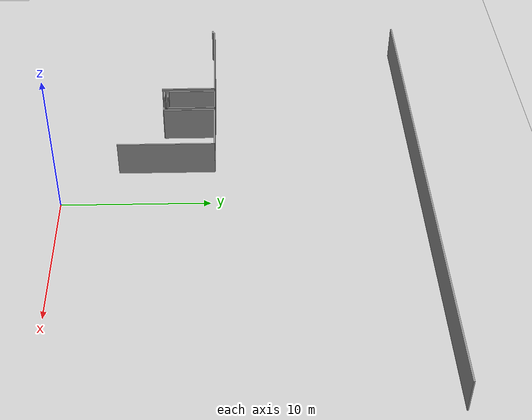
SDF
<sdf version="1.6">
 <world name="default">
  <model name="ground_plane">
   <static>1</static>
   <link name="link">
    <collision name="collision">
     <geometry><plane><normal>0 0 1</normal><size>100 100</size></plane></geometry>
     <surface><friction><ode><mu>100</mu><mu2>50</mu2></ode></friction></surface>
    </collision>
    <visual name="visual">
     <cast_shadows>0</cast_shadows>
     <geometry><plane><normal>0 0 1</normal><size>100 100</size></plane></geometry>
     <material>
      <script><uri>file://media/materials/scripts/gazebo.material</uri><name>Gazebo/Grey</name></script>
     </material>
    </visual>
   </link>
  </model>
  <model name="50055648">
   <static>1</static>
   <link name="Wall_4">
    <collision name="Wall_4_Collision">
     <geometry><box><size>0.269940676567 0.1 2.5</size></box></geometry>
     <pose>0.134970338283 0 1.25 0 0 0</pose>
    </collision>
    <visual name="Wall_4_Visual">
     <pose>0.134970338283 0 1.25 0 0 0</pose>
     <geometry><box><size>0.269940676567 0.1 2.5</size></box></geometry>
     <material>
      <script><uri>file://media/materials/scripts/gazebo.material</uri><name>Gazebo/Grey</name></script>
      <ambient>1 1 1 1</ambient>
     </material>
    </visual>
    <pose>0.00482717445155 -13.8854943408 0 0 0 0.0</pose>
   </link>
   <link name="Wall_5">
    <collision name="Wall_5_Collision">
     <geometry><box><size>0.132874328324 0.1 2.5</size></box></geometry>
     <pose>0.066437164162 0 1.25 0 0 0</pose>
    </collision>
    <visual name="Wall_5_Visual">
     <pose>0.066437164162 0 1.25 0 0 0</pose>
     <geometry><box><size>0.132874328324 0.1 2.5</size></box></geometry>
     <material>
      <script><uri>file://media/materials/scripts/gazebo.material</uri><name>Gazebo/Grey</name></script>
      <ambient>1 1 1 1</ambient>
     </material>
    </visual>
    <pose>0.274767851018 -13.8854943408 0 0 0 1.57079632679</pose>
   </link>
   <link name="Wall_6">
    <collision name="Wall_6_Collision">
     <geometry><box><size>7.29246325631 0.1 2.5</size></box></geometry>
     <pose>3.64623162816 0 1.25 0 0 0</pose>
    </collision>
    <visual name="Wall_6_Visual">
     <pose>3.64623162816 0 1.25 0 0 0</pose>
     <geometry><box><size>7.29246325631 0.1 2.5</size></box></geometry>
     <material>
      <script><uri>file://media/materials/scripts/gazebo.material</uri><name>Gazebo/Grey</name></script>
      <ambient>1 1 1 1</ambient>
     </material>
    </visual>
    <pose>0.274767851018 -13.7526200124 0 0 0 0.0</pose>
   </link>
   <link name="Wall_7">
    <collision name="Wall_7_Collision">
     <geometry><box><size>3.78285336822 0.1 2.5</size></box></geometry>
     <pose>1.89142668411 0 1.25 0 0 0</pose>
    </collision>
    <visual name="Wall_7_Visual">
     <pose>1.89142668411 0 1.25 0 0 0</pose>
     <geometry><box><size>3.78285336822 0.1 2.5</size></box></geometry>
     <material>
      <script><uri>file://media/materials/scripts/gazebo.material</uri><name>Gazebo/Grey</name></script>
      <ambient>1 1 1 1</ambient>
     </material>
    </visual>
    <pose>7.56723110733 -13.7526200124 0 0 0 -1.57079632679</pose>
   </link>
   <link name="Wall_12">
    <collision name="Wall_12_Collision">
     <geometry><box><size>0.0163869869539 0.1 2.5</size></box></geometry>
     <pose>0.00819349347696 0 1.25 0 0 0</pose>
    </collision>
    <visual name="Wall_12_Visual">
     <pose>0.00819349347696 0 1.25 0 0 0</pose>
     <geometry><box><size>0.0163869869539 0.1 2.5</size></box></geometry>
     <material>
      <script><uri>file://media/materials/scripts/gazebo.material</uri><name>Gazebo/Grey</name></script>
      <ambient>1 1 1 1</ambient>
     </material>
    </visual>
    <pose>7.91643906963 -17.0936598875 0 0 0 3.14159265359</pose>
   </link>
   <link name="Wall_13">
    <collision name="Wall_13_Collision">
     <geometry><box><size>3.3391344114 0.1 2.5</size></box></geometry>
     <pose>1.6695672057 0 1.25 0 0 0</pose>
    </collision>
    <visual name="Wall_13_Visual">
     <pose>1.6695672057 0 1.25 0 0 0</pose>
     <geometry><box><size>3.3391344114 0.1 2.5</size></box></geometry>
     <material>
      <script><uri>file://media/materials/scripts/gazebo.material</uri><name>Gazebo/Grey</name></script>
      <ambient>1 1 1 1</ambient>
     </material>
    </visual>
    <pose>7.90005208267 -17.0936598875 0 0 0 1.57079632679</pose>
   </link>
   <link name="Wall_14">
    <collision name="Wall_14_Collision">
     <geometry><box><size>1.92210464806 0.1 2.5</size></box></geometry>
     <pose>0.96105232403 0 1.25 0 0 0</pose>
    </collision>
    <visual name="Wall_14_Visual">
     <pose>0.96105232403 0 1.25 0 0 0</pose>
     <geometry><box><size>1.92210464806 0.1 2.5</size></box></geometry>
     <material>
      <script><uri>file://media/materials/scripts/gazebo.material</uri><name>Gazebo/Grey</name></script>
      <ambient>1 1 1 1</ambient>
     </material>
    </visual>
    <pose>7.90005208267 -13.754525476 0 0 0 0.0</pose>
   </link>
   <link name="Wall_15">
    <collision name="Wall_15_Collision">
     <geometry><box><size>3.33684785508 0.1 2.5</size></box></geometry>
     <pose>1.66842392754 0 1.25 0 0 0</pose>
    </collision>
    <visual name="Wall_15_Visual">
     <pose>1.66842392754 0 1.25 0 0 0</pose>
     <geometry><box><size>3.33684785508 0.1 2.5</size></box></geometry>
     <material>
      <script><uri>file://media/materials/scripts/gazebo.material</uri><name>Gazebo/Grey</name></script>
      <ambient>1 1 1 1</ambient>
     </material>
    </visual>
    <pose>9.82215673073 -13.754525476 0 0 0 -1.57079632679</pose>
   </link>
   <link name="Wall_16">
    <collision name="Wall_16_Collision">
     <geometry><box><size>0.0793943166372 0.1 2.5</size></box></geometry>
     <pose>0.0396971583186 0 1.25 0 0 0</pose>
    </collision>
    <visual name="Wall_16_Visual">
     <pose>0.0396971583186 0 1.25 0 0 0</pose>
     <geometry><box><size>0.0793943166372 0.1 2.5</size></box></geometry>
     <material>
      <script><uri>file://media/materials/scripts/gazebo.material</uri><name>Gazebo/Grey</name></script>
      <ambient>1 1 1 1</ambient>
     </material>
    </visual>
    <pose>9.82215673073 -17.0913733311 0 0 0 3.14159265359</pose>
   </link>
   <link name="Wall_17">
    <collision name="Wall_17_Collision">
     <geometry><box><size>0.671997386178 0.1 2.5</size></box></geometry>
     <pose>0.335998693089 0 1.25 0 0 0</pose>
    </collision>
    <visual name="Wall_17_Visual">
     <pose>0.335998693089 0 1.25 0 0 0</pose>
     <geometry><box><size>0.671997386178 0.1 2.5</size></box></geometry>
     <material>
      <script><uri>file://media/materials/scripts/gazebo.material</uri><name>Gazebo/Grey</name></script>
      <ambient>1 1 1 1</ambient>
     </material>
    </visual>
    <pose>8.58843256564 -17.0913733311 0 0 0 -3.13819002022</pose>
   </link>
   <link name="Wall_28">
    <collision name="Wall_28_Collision">
     <geometry><box><size>0.569733616189 0.1 2.5</size></box></geometry>
     <pose>0.284866808094 0 1.25 0 0 0</pose>
    </collision>
    <visual name="Wall_28_Visual">
     <pose>0.284866808094 0 1.25 0 0 0</pose>
     <geometry><box><size>0.569733616189 0.1 2.5</size></box></geometry>
     <material>
      <script><uri>file://media/materials/scripts/gazebo.material</uri><name>Gazebo/Grey</name></script>
      <ambient>1 1 1 1</ambient>
     </material>
    </visual>
    <pose>7.90106832992 -17.3620761931 0 0 0 0.0</pose>
   </link>
   <link name="Wall_29">
    <collision name="Wall_29_Collision">
     <geometry><box><size>0.0213411923121 0.1 2.5</size></box></geometry>
     <pose>0.010670596156 0 1.25 0 0 0</pose>
    </collision>
    <visual name="Wall_29_Visual">
     <pose>0.010670596156 0 1.25 0 0 0</pose>
     <geometry><box><size>0.0213411923121 0.1 2.5</size></box></geometry>
     <material>
      <script><uri>file://media/materials/scripts/gazebo.material</uri><name>Gazebo/Grey</name></script>
      <ambient>1 1 1 1</ambient>
     </material>
    </visual>
    <pose>8.47080194611 -17.3620761931 0 0 0 1.57079632679</pose>
   </link>
   <link name="Wall_30">
    <collision name="Wall_30_Collision">
     <geometry><box><size>0.109246579693 0.1 2.5</size></box></geometry>
     <pose>0.0546232898464 0 1.25 0 0 0</pose>
    </collision>
    <visual name="Wall_30_Visual">
     <pose>0.0546232898464 0 1.25 0 0 0</pose>
     <geometry><box><size>0.109246579693 0.1 2.5</size></box></geometry>
     <material>
      <script><uri>file://media/materials/scripts/gazebo.material</uri><name>Gazebo/Grey</name></script>
      <ambient>1 1 1 1</ambient>
     </material>
    </visual>
    <pose>8.47080194611 -17.3407350008 0 0 0 0.0</pose>
   </link>
   <link name="Wall_31">
    <collision name="Wall_31_Collision">
     <geometry><box><size>0.377027730847 0.1 2.5</size></box></geometry>
     <pose>0.188513865423 0 1.25 0 0 0</pose>
    </collision>
    <visual name="Wall_31_Visual">
     <pose>0.188513865423 0 1.25 0 0 0</pose>
     <geometry><box><size>0.377027730847 0.1 2.5</size></box></geometry>
     <material>
      <script><uri>file://media/materials/scripts/gazebo.material</uri><name>Gazebo/Grey</name></script>
      <ambient>1 1 1 1</ambient>
     </material>
    </visual>
    <pose>9.71633998552 -17.3407350008 0 0 0 0.0</pose>
   </link>
   <link name="Wall_32">
    <collision name="Wall_32_Collision">
     <geometry><box><size>3.57185503233 0.1 2.5</size></box></geometry>
     <pose>1.78592751616 0 1.25 0 0 0</pose>
    </collision>
    <visual name="Wall_32_Visual">
     <pose>1.78592751616 0 1.25 0 0 0</pose>
     <geometry><box><size>3.57185503233 0.1 2.5</size></box></geometry>
     <material>
      <script><uri>file://media/materials/scripts/gazebo.material</uri><name>Gazebo/Grey</name></script>
      <ambient>1 1 1 1</ambient>
     </material>
    </visual>
    <pose>10.0933677164 -17.3407350008 0 0 0 1.57079632679</pose>
   </link>
   <link name="Wall_33">
    <collision name="Wall_33_Collision">
     <geometry><box><size>3.79898629337 0.1 2.5</size></box></geometry>
     <pose>1.89949314668 0 1.25 0 0 0</pose>
    </collision>
    <visual name="Wall_33_Visual">
     <pose>1.89949314668 0 1.25 0 0 0</pose>
     <geometry><box><size>3.79898629337 0.1 2.5</size></box></geometry>
     <material>
      <script><uri>file://media/materials/scripts/gazebo.material</uri><name>Gazebo/Grey</name></script>
      <ambient>1 1 1 1</ambient>
     </material>
    </visual>
    <pose>10.0933677164 -13.7688799685 0 0 0 0.0</pose>
   </link>
   <link name="Wall_34">
    <collision name="Wall_34_Collision">
     <geometry><box><size>6.59722310438 0.1 2.5</size></box></geometry>
     <pose>3.29861155219 0 1.25 0 0 0</pose>
    </collision>
    <visual name="Wall_34_Visual">
     <pose>3.29861155219 0 1.25 0 0 0</pose>
     <geometry><box><size>6.59722310438 0.1 2.5</size></box></geometry>
     <material>
      <script><uri>file://media/materials/scripts/gazebo.material</uri><name>Gazebo/Grey</name></script>
      <ambient>1 1 1 1</ambient>
     </material>
    </visual>
    <pose>13.8923540097 -13.7688799685 0 0 0 -1.57079632679</pose>
   </link>
   <link name="Wall_279">
    <collision name="Wall_279_Collision">
     <geometry><box><size>34.3126992797 0.1 2.5</size></box></geometry>
     <pose>17.1563496399 0 1.25 0 0 0</pose>
    </collision>
    <visual name="Wall_279_Visual">
     <pose>17.1563496399 0 1.25 0 0 0</pose>
     <geometry><box><size>34.3126992797 0.1 2.5</size></box></geometry>
     <material>
      <script><uri>file://media/materials/scripts/gazebo.material</uri><name>Gazebo/Grey</name></script>
      <ambient>1 1 1 1</ambient>
     </material>
    </visual>
   </link>
   <pose>-17.15 24.0530474714 0 0 0 0</pose>
  </model>
 </world>
</sdf>
